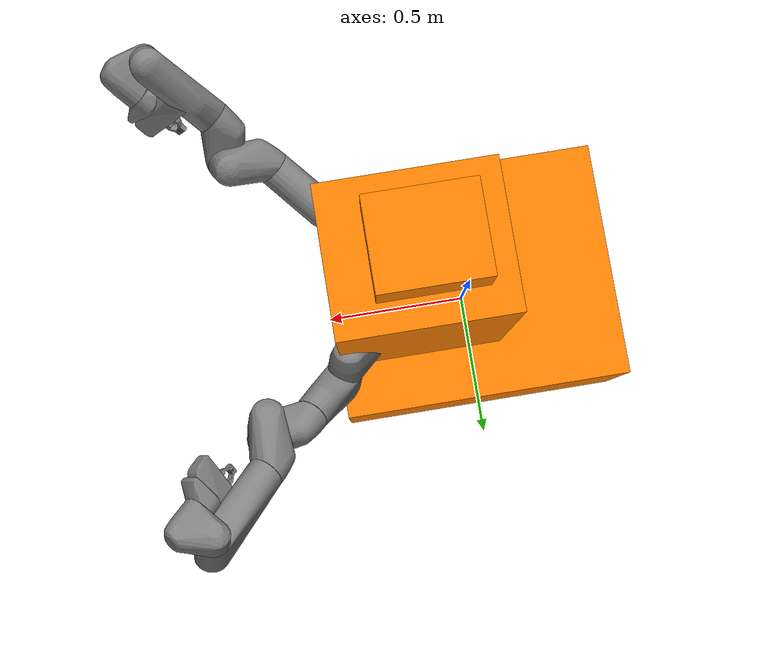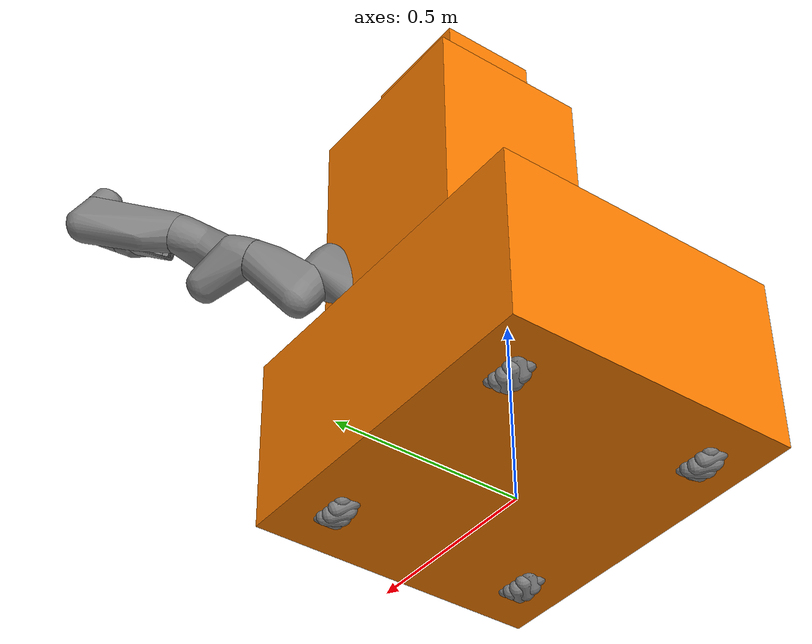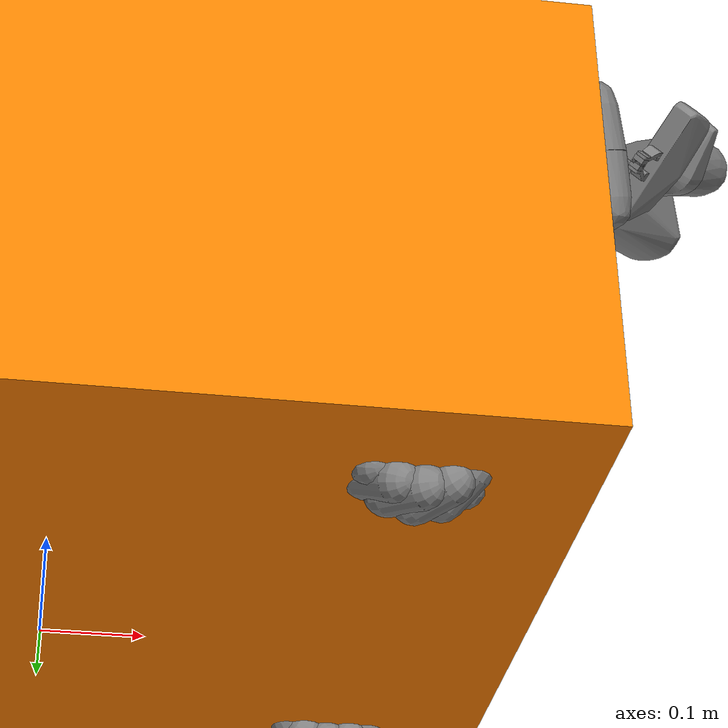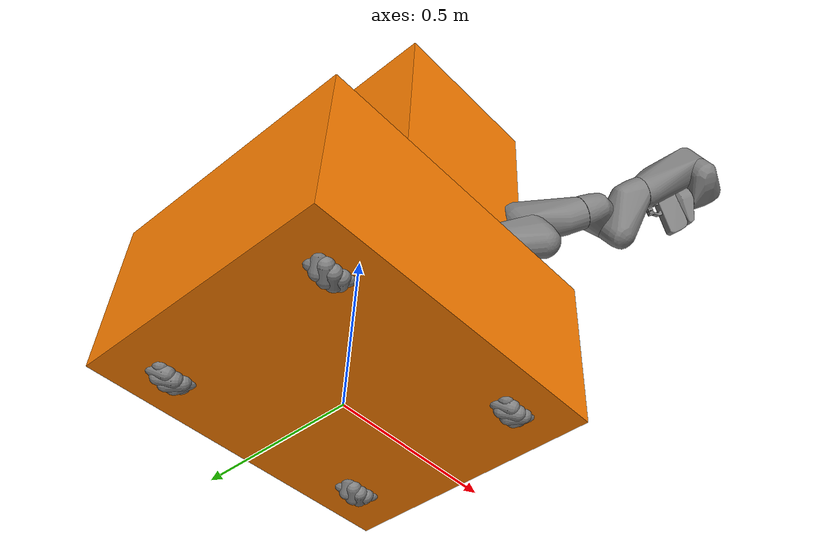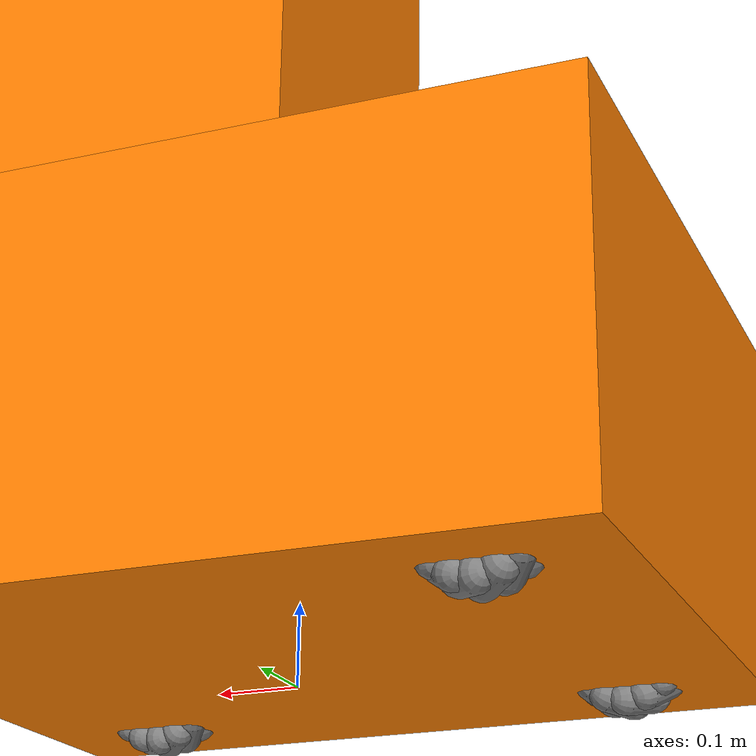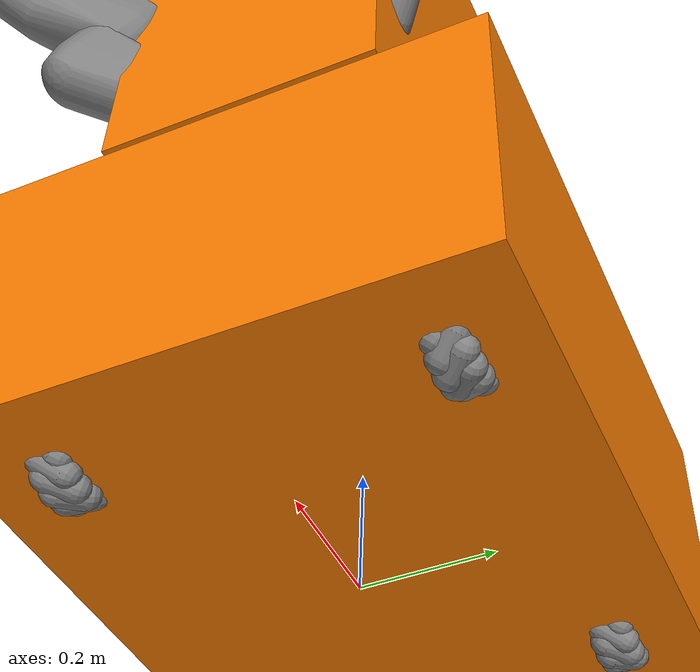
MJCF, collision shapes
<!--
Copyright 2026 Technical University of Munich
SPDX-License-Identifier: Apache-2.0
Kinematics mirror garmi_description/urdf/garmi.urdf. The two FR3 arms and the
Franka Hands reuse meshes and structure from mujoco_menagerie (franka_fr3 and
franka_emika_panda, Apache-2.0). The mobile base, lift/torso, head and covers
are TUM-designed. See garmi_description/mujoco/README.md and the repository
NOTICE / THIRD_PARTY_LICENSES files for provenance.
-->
<mujoco model="garmi">
  <compiler angle="radian" assetdir="assets" autolimits="true"/>

  <option integrator="implicitfast"/>

  <default>
    <!-- Franka FR3 arm (from mujoco_menagerie/franka_fr3). -->
    <default class="fr3">
      <joint damping="0.21" armature="0.195" frictionloss="1.137"/>
      <position inheritrange="1"/>
      <default class="fr3_vis">
        <geom type="mesh" group="2" contype="0" conaffinity="0"/>
      </default>
      <default class="fr3_col">
        <!-- contype/conaffinity 3 = bit1 (floor) + bit2 (robot self-collision) -->
        <geom type="mesh" group="3" mass="0" density="0" contype="3" conaffinity="3"/>
      </default>
    </default>

    <!-- Franka Hand (from mujoco_menagerie/franka_emika_panda). -->
    <default class="hand">
      <joint armature="0.1" damping="1" axis="0 0 1"/>
      <general dyntype="none" biastype="affine" ctrlrange="-2.8973 2.8973" forcerange="-87 87"/>
      <default class="finger">
        <joint axis="0 1 0" type="slide" range="0 0.04"/>
      </default>
      <default class="hand_vis">
        <geom type="mesh" contype="0" conaffinity="0" group="2"/>
      </default>
      <default class="hand_col">
        <geom type="mesh" group="3" contype="3" conaffinity="3"/>
        <default class="fingertip_pad_collision_1">
          <geom type="box" size="0.0085 0.004 0.0085" pos="0 0.0055 0.0445"/>
        </default>
        <default class="fingertip_pad_collision_2">
          <geom type="box" size="0.003 0.002 0.003" pos="0.0055 0.002 0.05"/>
        </default>
        <default class="fingertip_pad_collision_3">
          <geom type="box" size="0.003 0.002 0.003" pos="-0.0055 0.002 0.05"/>
        </default>
        <default class="fingertip_pad_collision_4">
          <geom type="box" size="0.003 0.002 0.0035" pos="0.0055 0.002 0.0395"/>
        </default>
        <default class="fingertip_pad_collision_5">
          <geom type="box" size="0.003 0.002 0.0035" pos="-0.0055 0.002 0.0395"/>
        </default>
      </default>
    </default>

    <!-- Garmi-specific parts (base, lift, torso, head). -->
    <default class="garmi_vis">
      <geom type="mesh" group="2" contype="0" conaffinity="0" density="0"/>
    </default>
    <!-- Mecanum wheel hub (driven hinge about the axle). The hub itself has no
         collision; ground contact is via the free-spinning rollers below. -->
    <default class="wheel">
      <joint axis="0 1 0" damping="0.3" frictionloss="0.3"/>
    </default>
    <default class="roller">
      <joint damping="0.0005" frictionloss="0.0005"/>
      <!-- group 3 = hidden collision geom; contype 4 / conaffinity 1 lets
           rollers touch the floor (bit1) but not each other or the self-
           collision boxes (bit2). -->
      <geom type="capsule" group="3" contype="4" conaffinity="1" condim="3"
            friction="1.2 0.005 0.0001" priority="1" solref="0.01 1" solimp="0.9 0.95 0.002"/>
    </default>
    <default class="selfcol">
      <geom type="box" group="3" contype="2" conaffinity="2" mass="0" rgba="1 0.5 0 0.15"/>
    </default>
  </default>

  <asset>
    <!-- Shared materials (FR3 + Hand). -->
    <material name="black" rgba=".2 .2 .2 1"/>
    <material name="white" rgba="1 1 1 1"/>
    <material name="off_white" rgba="0.901961 0.921569 0.929412 1"/>
    <material name="red" rgba="1 0.072272 0.039546 1"/>
    <material name="gray" rgba="0.863156 0.863156 0.863157 1"/>
    <material name="button_green" rgba="0.102241 0.571125 0.102242 1"/>
    <material name="button_red" rgba="0.520996 0.008023 0.013702 1"/>
    <material name="button_blue" rgba="0.024157 0.445201 0.737911 1"/>

    <!-- Garmi materials. -->
    <texture type="2d" name="fabric" file="body/fabric.png"/>
    <texture type="2d" name="face" file="head/face.png"/>
    <material name="Fabric" texture="fabric" specular="0.5" shininess="0.09"/>
    <material name="Grey_Plastic" specular="0.5" shininess="0.1225" rgba="0.066626 0.059511 0.048172 1"/>
    <material name="Screen" specular="0.5" shininess="1.0" rgba="0 0 0 1"/>
    <material name="White_Plastic" specular="0.5" shininess="0.25" rgba="1 1 1 1"/>
    <material name="Face" texture="face" specular="0.5" shininess="1.0"/>
    <material name="chassis" rgba="0.2 0.2 0.2 1"/>
    <material name="cover_grey" rgba="0.45 0.45 0.45 1"/>
    <material name="wheel" rgba="0.1 0.1 0.1 1"/>

    <mesh file="link0_0.obj"/>
    <mesh file="link0_1.obj"/>
    <mesh file="link0_2.obj"/>
    <mesh file="link0_3.obj"/>
    <mesh file="link0_4.obj"/>
    <mesh file="link0_5.obj"/>
    <mesh file="link0_7.obj"/>
    <mesh file="link0_8.obj"/>
    <mesh file="link0_9.obj"/>
    <mesh file="link0_10.obj"/>
    <mesh file="link0_11.obj"/>
    <mesh file="link1.obj"/>
    <mesh file="link2.obj"/>
    <mesh file="link3_0.obj"/>
    <mesh file="link3_1.obj"/>
    <mesh file="link4_0.obj"/>
    <mesh file="link4_1.obj"/>
    <mesh file="link5_0.obj"/>
    <mesh file="link5_1.obj"/>
    <mesh file="link5_2.obj"/>
    <mesh file="link6_0.obj"/>
    <mesh file="link6_1.obj"/>
    <mesh file="link6_2.obj"/>
    <mesh file="link6_3.obj"/>
    <mesh file="link6_4.obj"/>
    <mesh file="link6_5.obj"/>
    <mesh file="link6_6.obj"/>
    <mesh file="link6_7.obj"/>
    <mesh file="link7_0.obj"/>
    <mesh file="link7_1.obj"/>
    <mesh file="link7_2.obj"/>
    <mesh file="link7_3.obj"/>
    <mesh name="link0_coll" file="link0.stl"/>
    <mesh name="link1_coll" file="link1.stl"/>
    <mesh name="link2_coll" file="link2.stl"/>
    <mesh name="link3_coll" file="link3.stl"/>
    <mesh name="link4_coll" file="link4.stl"/>
    <mesh name="link5_coll" file="link5.stl"/>
    <mesh name="link6_coll" file="link6.stl"/>
    <mesh name="link7_coll" file="link7.stl"/>

    <!-- Franka Hand meshes. -->
    <mesh file="hand_0.obj"/>
    <mesh file="hand_1.obj"/>
    <mesh file="hand_2.obj"/>
    <mesh file="hand_3.obj"/>
    <mesh file="hand_4.obj"/>
    <mesh file="finger_0.obj"/>
    <mesh file="finger_1.obj"/>
    <mesh name="hand_c" file="hand.stl"/>

    <!-- Garmi base / lift / wheel meshes. -->
    <mesh name="chassis" file="body.stl"/>
    <mesh name="side_cover" file="side-cover.stl"/>
    <mesh name="end_cover" file="end-cover.stl"/>
    <mesh name="lights" file="lights.stl"/>
    <mesh name="mecanum" file="mecanum.stl"/>
    <mesh name="plate" file="plate.stl"/>
    <mesh name="lift_base" file="base.stl"/>
    <mesh name="lower" file="lower.stl"/>
    <mesh name="upper" file="upper.stl"/>

    <!-- Garmi torso / head / neck / covers (split by material). -->
    <mesh file="body/body_0.obj"/>
    <mesh file="body/body_1.obj"/>
    <mesh file="body/body_2.obj"/>
    <mesh file="body/body_3.obj"/>
    <mesh file="head/head_0.obj"/>
    <mesh file="head/head_1.obj"/>
    <mesh file="cover/cover.obj"/>
    <mesh file="mounting_plate/mounting_plate.obj"/>
    <mesh file="neck_1/neck_1.obj"/>
    <mesh file="neck_2/neck_2.obj"/>
  </asset>

  <worldbody>
    <body name="base_link" pos="0 0 0.0259" childclass="garmi_vis">
      <freejoint name="base_free"/>
      <inertial pos="0.012 0.002 0.067" mass="165.304"
        fullinertia="4.4744 7.1624 4.6155 0.03098 0.003647 0.1228"/>

      <!-- Mobile base shell (visual only). -->
      <geom mesh="chassis" material="chassis"/>
      <geom mesh="side_cover" material="cover_grey"/>
      <geom mesh="side_cover" material="cover_grey" quat="0 0 0 1"/>
      <geom mesh="end_cover" material="cover_grey"/>
      <geom mesh="end_cover" material="cover_grey" quat="0 0 0 1"/>
      <geom mesh="lights" material="red"/>
      <geom mesh="cover" material="White_Plastic" quat="0.500048 0.5 0.499952 0.5"/>
      <geom mesh="mounting_plate" material="Grey_Plastic" quat="0.500048 0.5 0.499952 0.5"/>
      <!-- Coarse self-collision volume for the mobile base, including the TUM
           cover on top (spans the chassis + cover, ~0.03..0.50 m). -->
      <geom class="selfcol" pos="0 0 0.2414" size="0.4790 0.3950 0.2378"/>

      <!-- Mecanum wheels: driven hub + free-spinning 45-deg rollers
           (true mecanum; produces holonomic motion via physics). -->
      <body name="wheel_fl" pos="0.319 0.2755 0.05">
        <joint name="wheel_fl_joint" class="wheel"/>
        <inertial pos="0 0 0" mass="1.8" diaginertia="0.0035 0.0052 0.0035"/>
        <geom class="garmi_vis" mesh="mecanum" material="wheel" quat="0.707107 0.707107 0 0"/>
        <body name="wheel_fl_r0" pos="0.05390 0.00000 0.00000">
          <joint name="wheel_fl_r0_j" type="hinge" axis="-0.00000 0.70711 0.70711" damping="0.0005" frictionloss="0.0005"/>
          <geom class="roller" fromto="0.00000 -0.01414 -0.01414 -0.00000 0.01414 0.01414" size="0.022"/>
        </body>
        <body name="wheel_fl_r1" pos="0.04856 0.00000 0.02339">
          <joint name="wheel_fl_r1_j" type="hinge" axis="-0.30680 0.70711 0.63708" damping="0.0005" frictionloss="0.0005"/>
          <geom class="roller" fromto="0.00614 -0.01414 -0.01274 -0.00614 0.01414 0.01274" size="0.022"/>
        </body>
        <body name="wheel_fl_r2" pos="0.03361 0.00000 0.04214">
          <joint name="wheel_fl_r2_j" type="hinge" axis="-0.55284 0.70711 0.44087" damping="0.0005" frictionloss="0.0005"/>
          <geom class="roller" fromto="0.01106 -0.01414 -0.00882 -0.01106 0.01414 0.00882" size="0.022"/>
        </body>
        <body name="wheel_fl_r3" pos="0.01199 0.00000 0.05255">
          <joint name="wheel_fl_r3_j" type="hinge" axis="-0.68938 0.70711 0.15735" damping="0.0005" frictionloss="0.0005"/>
          <geom class="roller" fromto="0.01379 -0.01414 -0.00315 -0.01379 0.01414 0.00315" size="0.022"/>
        </body>
        <body name="wheel_fl_r4" pos="-0.01199 0.00000 0.05255">
          <joint name="wheel_fl_r4_j" type="hinge" axis="-0.68938 0.70711 -0.15735" damping="0.0005" frictionloss="0.0005"/>
          <geom class="roller" fromto="0.01379 -0.01414 0.00315 -0.01379 0.01414 -0.00315" size="0.022"/>
        </body>
        <body name="wheel_fl_r5" pos="-0.03361 0.00000 0.04214">
          <joint name="wheel_fl_r5_j" type="hinge" axis="-0.55284 0.70711 -0.44087" damping="0.0005" frictionloss="0.0005"/>
          <geom class="roller" fromto="0.01106 -0.01414 0.00882 -0.01106 0.01414 -0.00882" size="0.022"/>
        </body>
        <body name="wheel_fl_r6" pos="-0.04856 0.00000 0.02339">
          <joint name="wheel_fl_r6_j" type="hinge" axis="-0.30680 0.70711 -0.63708" damping="0.0005" frictionloss="0.0005"/>
          <geom class="roller" fromto="0.00614 -0.01414 0.01274 -0.00614 0.01414 -0.01274" size="0.022"/>
        </body>
        <body name="wheel_fl_r7" pos="-0.05390 0.00000 0.00000">
          <joint name="wheel_fl_r7_j" type="hinge" axis="-0.00000 0.70711 -0.70711" damping="0.0005" frictionloss="0.0005"/>
          <geom class="roller" fromto="0.00000 -0.01414 0.01414 -0.00000 0.01414 -0.01414" size="0.022"/>
        </body>
        <body name="wheel_fl_r8" pos="-0.04856 0.00000 -0.02339">
          <joint name="wheel_fl_r8_j" type="hinge" axis="0.30680 0.70711 -0.63708" damping="0.0005" frictionloss="0.0005"/>
          <geom class="roller" fromto="-0.00614 -0.01414 0.01274 0.00614 0.01414 -0.01274" size="0.022"/>
        </body>
        <body name="wheel_fl_r9" pos="-0.03361 0.00000 -0.04214">
          <joint name="wheel_fl_r9_j" type="hinge" axis="0.55284 0.70711 -0.44087" damping="0.0005" frictionloss="0.0005"/>
          <geom class="roller" fromto="-0.01106 -0.01414 0.00882 0.01106 0.01414 -0.00882" size="0.022"/>
        </body>
        <body name="wheel_fl_r10" pos="-0.01199 0.00000 -0.05255">
          <joint name="wheel_fl_r10_j" type="hinge" axis="0.68938 0.70711 -0.15735" damping="0.0005" frictionloss="0.0005"/>
          <geom class="roller" fromto="-0.01379 -0.01414 0.00315 0.01379 0.01414 -0.00315" size="0.022"/>
        </body>
        <body name="wheel_fl_r11" pos="0.01199 0.00000 -0.05255">
          <joint name="wheel_fl_r11_j" type="hinge" axis="0.68938 0.70711 0.15735" damping="0.0005" frictionloss="0.0005"/>
          <geom class="roller" fromto="-0.01379 -0.01414 -0.00315 0.01379 0.01414 0.00315" size="0.022"/>
        </body>
        <body name="wheel_fl_r12" pos="0.03361 0.00000 -0.04214">
          <joint name="wheel_fl_r12_j" type="hinge" axis="0.55284 0.70711 0.44087" damping="0.0005" frictionloss="0.0005"/>
          <geom class="roller" fromto="-0.01106 -0.01414 -0.00882 0.01106 0.01414 0.00882" size="0.022"/>
        </body>
        <body name="wheel_fl_r13" pos="0.04856 0.00000 -0.02339">
          <joint name="wheel_fl_r13_j" type="hinge" axis="0.30680 0.70711 0.63708" damping="0.0005" frictionloss="0.0005"/>
          <geom class="roller" fromto="-0.00614 -0.01414 -0.01274 0.00614 0.01414 0.01274" size="0.022"/>
        </body>
      </body>
      <body name="wheel_fr" pos="0.319 -0.2755 0.05">
        <joint name="wheel_fr_joint" class="wheel"/>
        <inertial pos="0 0 0" mass="1.8" diaginertia="0.0035 0.0052 0.0035"/>
        <geom class="garmi_vis" mesh="mecanum" material="wheel" quat="0.707107 0.707107 0 0"/>
        <body name="wheel_fr_r0" pos="0.05390 0.00000 0.00000">
          <joint name="wheel_fr_r0_j" type="hinge" axis="-0.00000 -0.70711 0.70711" damping="0.0005" frictionloss="0.0005"/>
          <geom class="roller" fromto="0.00000 0.01414 -0.01414 -0.00000 -0.01414 0.01414" size="0.022"/>
        </body>
        <body name="wheel_fr_r1" pos="0.04856 0.00000 0.02339">
          <joint name="wheel_fr_r1_j" type="hinge" axis="-0.30680 -0.70711 0.63708" damping="0.0005" frictionloss="0.0005"/>
          <geom class="roller" fromto="0.00614 0.01414 -0.01274 -0.00614 -0.01414 0.01274" size="0.022"/>
        </body>
        <body name="wheel_fr_r2" pos="0.03361 0.00000 0.04214">
          <joint name="wheel_fr_r2_j" type="hinge" axis="-0.55284 -0.70711 0.44087" damping="0.0005" frictionloss="0.0005"/>
          <geom class="roller" fromto="0.01106 0.01414 -0.00882 -0.01106 -0.01414 0.00882" size="0.022"/>
        </body>
        <body name="wheel_fr_r3" pos="0.01199 0.00000 0.05255">
          <joint name="wheel_fr_r3_j" type="hinge" axis="-0.68938 -0.70711 0.15735" damping="0.0005" frictionloss="0.0005"/>
          <geom class="roller" fromto="0.01379 0.01414 -0.00315 -0.01379 -0.01414 0.00315" size="0.022"/>
        </body>
        <body name="wheel_fr_r4" pos="-0.01199 0.00000 0.05255">
          <joint name="wheel_fr_r4_j" type="hinge" axis="-0.68938 -0.70711 -0.15735" damping="0.0005" frictionloss="0.0005"/>
          <geom class="roller" fromto="0.01379 0.01414 0.00315 -0.01379 -0.01414 -0.00315" size="0.022"/>
        </body>
        <body name="wheel_fr_r5" pos="-0.03361 0.00000 0.04214">
          <joint name="wheel_fr_r5_j" type="hinge" axis="-0.55284 -0.70711 -0.44087" damping="0.0005" frictionloss="0.0005"/>
          <geom class="roller" fromto="0.01106 0.01414 0.00882 -0.01106 -0.01414 -0.00882" size="0.022"/>
        </body>
        <body name="wheel_fr_r6" pos="-0.04856 0.00000 0.02339">
          <joint name="wheel_fr_r6_j" type="hinge" axis="-0.30680 -0.70711 -0.63708" damping="0.0005" frictionloss="0.0005"/>
          <geom class="roller" fromto="0.00614 0.01414 0.01274 -0.00614 -0.01414 -0.01274" size="0.022"/>
        </body>
        <body name="wheel_fr_r7" pos="-0.05390 0.00000 0.00000">
          <joint name="wheel_fr_r7_j" type="hinge" axis="-0.00000 -0.70711 -0.70711" damping="0.0005" frictionloss="0.0005"/>
          <geom class="roller" fromto="0.00000 0.01414 0.01414 -0.00000 -0.01414 -0.01414" size="0.022"/>
        </body>
        <body name="wheel_fr_r8" pos="-0.04856 0.00000 -0.02339">
          <joint name="wheel_fr_r8_j" type="hinge" axis="0.30680 -0.70711 -0.63708" damping="0.0005" frictionloss="0.0005"/>
          <geom class="roller" fromto="-0.00614 0.01414 0.01274 0.00614 -0.01414 -0.01274" size="0.022"/>
        </body>
        <body name="wheel_fr_r9" pos="-0.03361 0.00000 -0.04214">
          <joint name="wheel_fr_r9_j" type="hinge" axis="0.55284 -0.70711 -0.44087" damping="0.0005" frictionloss="0.0005"/>
          <geom class="roller" fromto="-0.01106 0.01414 0.00882 0.01106 -0.01414 -0.00882" size="0.022"/>
        </body>
        <body name="wheel_fr_r10" pos="-0.01199 0.00000 -0.05255">
          <joint name="wheel_fr_r10_j" type="hinge" axis="0.68938 -0.70711 -0.15735" damping="0.0005" frictionloss="0.0005"/>
          <geom class="roller" fromto="-0.01379 0.01414 0.00315 0.01379 -0.01414 -0.00315" size="0.022"/>
        </body>
        <body name="wheel_fr_r11" pos="0.01199 0.00000 -0.05255">
          <joint name="wheel_fr_r11_j" type="hinge" axis="0.68938 -0.70711 0.15735" damping="0.0005" frictionloss="0.0005"/>
          <geom class="roller" fromto="-0.01379 0.01414 -0.00315 0.01379 -0.01414 0.00315" size="0.022"/>
        </body>
        <body name="wheel_fr_r12" pos="0.03361 0.00000 -0.04214">
          <joint name="wheel_fr_r12_j" type="hinge" axis="0.55284 -0.70711 0.44087" damping="0.0005" frictionloss="0.0005"/>
          <geom class="roller" fromto="-0.01106 0.01414 -0.00882 0.01106 -0.01414 0.00882" size="0.022"/>
        </body>
        <body name="wheel_fr_r13" pos="0.04856 0.00000 -0.02339">
          <joint name="wheel_fr_r13_j" type="hinge" axis="0.30680 -0.70711 0.63708" damping="0.0005" frictionloss="0.0005"/>
          <geom class="roller" fromto="-0.00614 0.01414 -0.01274 0.00614 -0.01414 0.01274" size="0.022"/>
        </body>
      </body>
      <body name="wheel_rl" pos="-0.319 0.2755 0.05">
        <joint name="wheel_rl_joint" class="wheel"/>
        <inertial pos="0 0 0" mass="1.8" diaginertia="0.0035 0.0052 0.0035"/>
        <geom class="garmi_vis" mesh="mecanum" material="wheel" quat="0.707107 0.707107 0 0"/>
        <body name="wheel_rl_r0" pos="0.05390 0.00000 0.00000">
          <joint name="wheel_rl_r0_j" type="hinge" axis="-0.00000 -0.70711 0.70711" damping="0.0005" frictionloss="0.0005"/>
          <geom class="roller" fromto="0.00000 0.01414 -0.01414 -0.00000 -0.01414 0.01414" size="0.022"/>
        </body>
        <body name="wheel_rl_r1" pos="0.04856 0.00000 0.02339">
          <joint name="wheel_rl_r1_j" type="hinge" axis="-0.30680 -0.70711 0.63708" damping="0.0005" frictionloss="0.0005"/>
          <geom class="roller" fromto="0.00614 0.01414 -0.01274 -0.00614 -0.01414 0.01274" size="0.022"/>
        </body>
        <body name="wheel_rl_r2" pos="0.03361 0.00000 0.04214">
          <joint name="wheel_rl_r2_j" type="hinge" axis="-0.55284 -0.70711 0.44087" damping="0.0005" frictionloss="0.0005"/>
          <geom class="roller" fromto="0.01106 0.01414 -0.00882 -0.01106 -0.01414 0.00882" size="0.022"/>
        </body>
        <body name="wheel_rl_r3" pos="0.01199 0.00000 0.05255">
          <joint name="wheel_rl_r3_j" type="hinge" axis="-0.68938 -0.70711 0.15735" damping="0.0005" frictionloss="0.0005"/>
          <geom class="roller" fromto="0.01379 0.01414 -0.00315 -0.01379 -0.01414 0.00315" size="0.022"/>
        </body>
        <body name="wheel_rl_r4" pos="-0.01199 0.00000 0.05255">
          <joint name="wheel_rl_r4_j" type="hinge" axis="-0.68938 -0.70711 -0.15735" damping="0.0005" frictionloss="0.0005"/>
          <geom class="roller" fromto="0.01379 0.01414 0.00315 -0.01379 -0.01414 -0.00315" size="0.022"/>
        </body>
        <body name="wheel_rl_r5" pos="-0.03361 0.00000 0.04214">
          <joint name="wheel_rl_r5_j" type="hinge" axis="-0.55284 -0.70711 -0.44087" damping="0.0005" frictionloss="0.0005"/>
          <geom class="roller" fromto="0.01106 0.01414 0.00882 -0.01106 -0.01414 -0.00882" size="0.022"/>
        </body>
        <body name="wheel_rl_r6" pos="-0.04856 0.00000 0.02339">
          <joint name="wheel_rl_r6_j" type="hinge" axis="-0.30680 -0.70711 -0.63708" damping="0.0005" frictionloss="0.0005"/>
          <geom class="roller" fromto="0.00614 0.01414 0.01274 -0.00614 -0.01414 -0.01274" size="0.022"/>
        </body>
        <body name="wheel_rl_r7" pos="-0.05390 0.00000 0.00000">
          <joint name="wheel_rl_r7_j" type="hinge" axis="-0.00000 -0.70711 -0.70711" damping="0.0005" frictionloss="0.0005"/>
          <geom class="roller" fromto="0.00000 0.01414 0.01414 -0.00000 -0.01414 -0.01414" size="0.022"/>
        </body>
        <body name="wheel_rl_r8" pos="-0.04856 0.00000 -0.02339">
          <joint name="wheel_rl_r8_j" type="hinge" axis="0.30680 -0.70711 -0.63708" damping="0.0005" frictionloss="0.0005"/>
          <geom class="roller" fromto="-0.00614 0.01414 0.01274 0.00614 -0.01414 -0.01274" size="0.022"/>
        </body>
        <body name="wheel_rl_r9" pos="-0.03361 0.00000 -0.04214">
          <joint name="wheel_rl_r9_j" type="hinge" axis="0.55284 -0.70711 -0.44087" damping="0.0005" frictionloss="0.0005"/>
          <geom class="roller" fromto="-0.01106 0.01414 0.00882 0.01106 -0.01414 -0.00882" size="0.022"/>
        </body>
        <body name="wheel_rl_r10" pos="-0.01199 0.00000 -0.05255">
          <joint name="wheel_rl_r10_j" type="hinge" axis="0.68938 -0.70711 -0.15735" damping="0.0005" frictionloss="0.0005"/>
          <geom class="roller" fromto="-0.01379 0.01414 0.00315 0.01379 -0.01414 -0.00315" size="0.022"/>
        </body>
        <body name="wheel_rl_r11" pos="0.01199 0.00000 -0.05255">
          <joint name="wheel_rl_r11_j" type="hinge" axis="0.68938 -0.70711 0.15735" damping="0.0005" frictionloss="0.0005"/>
          <geom class="roller" fromto="-0.01379 0.01414 -0.00315 0.01379 -0.01414 0.00315" size="0.022"/>
        </body>
        <body name="wheel_rl_r12" pos="0.03361 0.00000 -0.04214">
          <joint name="wheel_rl_r12_j" type="hinge" axis="0.55284 -0.70711 0.44087" damping="0.0005" frictionloss="0.0005"/>
          <geom class="roller" fromto="-0.01106 0.01414 -0.00882 0.01106 -0.01414 0.00882" size="0.022"/>
        </body>
        <body name="wheel_rl_r13" pos="0.04856 0.00000 -0.02339">
          <joint name="wheel_rl_r13_j" type="hinge" axis="0.30680 -0.70711 0.63708" damping="0.0005" frictionloss="0.0005"/>
          <geom class="roller" fromto="-0.00614 0.01414 -0.01274 0.00614 -0.01414 0.01274" size="0.022"/>
        </body>
      </body>
      <body name="wheel_rr" pos="-0.319 -0.2755 0.05">
        <joint name="wheel_rr_joint" class="wheel"/>
        <inertial pos="0 0 0" mass="1.8" diaginertia="0.0035 0.0052 0.0035"/>
        <geom class="garmi_vis" mesh="mecanum" material="wheel" quat="0.707107 0.707107 0 0"/>
        <body name="wheel_rr_r0" pos="0.05390 0.00000 0.00000">
          <joint name="wheel_rr_r0_j" type="hinge" axis="-0.00000 0.70711 0.70711" damping="0.0005" frictionloss="0.0005"/>
          <geom class="roller" fromto="0.00000 -0.01414 -0.01414 -0.00000 0.01414 0.01414" size="0.022"/>
        </body>
        <body name="wheel_rr_r1" pos="0.04856 0.00000 0.02339">
          <joint name="wheel_rr_r1_j" type="hinge" axis="-0.30680 0.70711 0.63708" damping="0.0005" frictionloss="0.0005"/>
          <geom class="roller" fromto="0.00614 -0.01414 -0.01274 -0.00614 0.01414 0.01274" size="0.022"/>
        </body>
        <body name="wheel_rr_r2" pos="0.03361 0.00000 0.04214">
          <joint name="wheel_rr_r2_j" type="hinge" axis="-0.55284 0.70711 0.44087" damping="0.0005" frictionloss="0.0005"/>
          <geom class="roller" fromto="0.01106 -0.01414 -0.00882 -0.01106 0.01414 0.00882" size="0.022"/>
        </body>
        <body name="wheel_rr_r3" pos="0.01199 0.00000 0.05255">
          <joint name="wheel_rr_r3_j" type="hinge" axis="-0.68938 0.70711 0.15735" damping="0.0005" frictionloss="0.0005"/>
          <geom class="roller" fromto="0.01379 -0.01414 -0.00315 -0.01379 0.01414 0.00315" size="0.022"/>
        </body>
        <body name="wheel_rr_r4" pos="-0.01199 0.00000 0.05255">
          <joint name="wheel_rr_r4_j" type="hinge" axis="-0.68938 0.70711 -0.15735" damping="0.0005" frictionloss="0.0005"/>
          <geom class="roller" fromto="0.01379 -0.01414 0.00315 -0.01379 0.01414 -0.00315" size="0.022"/>
        </body>
        <body name="wheel_rr_r5" pos="-0.03361 0.00000 0.04214">
          <joint name="wheel_rr_r5_j" type="hinge" axis="-0.55284 0.70711 -0.44087" damping="0.0005" frictionloss="0.0005"/>
          <geom class="roller" fromto="0.01106 -0.01414 0.00882 -0.01106 0.01414 -0.00882" size="0.022"/>
        </body>
        <body name="wheel_rr_r6" pos="-0.04856 0.00000 0.02339">
          <joint name="wheel_rr_r6_j" type="hinge" axis="-0.30680 0.70711 -0.63708" damping="0.0005" frictionloss="0.0005"/>
          <geom class="roller" fromto="0.00614 -0.01414 0.01274 -0.00614 0.01414 -0.01274" size="0.022"/>
        </body>
        <body name="wheel_rr_r7" pos="-0.05390 0.00000 0.00000">
          <joint name="wheel_rr_r7_j" type="hinge" axis="-0.00000 0.70711 -0.70711" damping="0.0005" frictionloss="0.0005"/>
          <geom class="roller" fromto="0.00000 -0.01414 0.01414 -0.00000 0.01414 -0.01414" size="0.022"/>
        </body>
        <body name="wheel_rr_r8" pos="-0.04856 0.00000 -0.02339">
          <joint name="wheel_rr_r8_j" type="hinge" axis="0.30680 0.70711 -0.63708" damping="0.0005" frictionloss="0.0005"/>
          <geom class="roller" fromto="-0.00614 -0.01414 0.01274 0.00614 0.01414 -0.01274" size="0.022"/>
        </body>
        <body name="wheel_rr_r9" pos="-0.03361 0.00000 -0.04214">
          <joint name="wheel_rr_r9_j" type="hinge" axis="0.55284 0.70711 -0.44087" damping="0.0005" frictionloss="0.0005"/>
          <geom class="roller" fromto="-0.01106 -0.01414 0.00882 0.01106 0.01414 -0.00882" size="0.022"/>
        </body>
        <body name="wheel_rr_r10" pos="-0.01199 0.00000 -0.05255">
          <joint name="wheel_rr_r10_j" type="hinge" axis="0.68938 0.70711 -0.15735" damping="0.0005" frictionloss="0.0005"/>
          <geom class="roller" fromto="-0.01379 -0.01414 0.00315 0.01379 0.01414 -0.00315" size="0.022"/>
        </body>
        <body name="wheel_rr_r11" pos="0.01199 0.00000 -0.05255">
          <joint name="wheel_rr_r11_j" type="hinge" axis="0.68938 0.70711 0.15735" damping="0.0005" frictionloss="0.0005"/>
          <geom class="roller" fromto="-0.01379 -0.01414 -0.00315 0.01379 0.01414 0.00315" size="0.022"/>
        </body>
        <body name="wheel_rr_r12" pos="0.03361 0.00000 -0.04214">
          <joint name="wheel_rr_r12_j" type="hinge" axis="0.55284 0.70711 0.44087" damping="0.0005" frictionloss="0.0005"/>
          <geom class="roller" fromto="-0.01106 -0.01414 -0.00882 0.01106 0.01414 0.00882" size="0.022"/>
        </body>
        <body name="wheel_rr_r13" pos="0.04856 0.00000 -0.02339">
          <joint name="wheel_rr_r13_j" type="hinge" axis="0.30680 0.70711 0.63708" damping="0.0005" frictionloss="0.0005"/>
          <geom class="roller" fromto="-0.00614 -0.01414 -0.01274 0.00614 0.01414 0.01274" size="0.022"/>
        </body>
      </body>

      <!-- Lift / torso column. -->
      <body name="default_mount" pos="0 0 0.28">
        <body name="lift_0_plate" pos="0.1115 0 -0.0037" quat="0.923880 0 0 0.382683">
          <geom class="garmi_vis" mesh="plate" material="cover_grey"/>
          <body name="lift_0_base" pos="0 0 0.018">
            <geom class="garmi_vis" mesh="lift_base" material="cover_grey" pos="0 0 -0.0179"/>
            <body name="lift_0_lower" pos="0 0 0.027">
              <!-- High damping/armature + frictionloss model the slow, stiff,
                   non-backdrivable lead-screw lift (URDF limit: 0.088 m/s). -->
              <joint name="lift_0_lower_joint" type="slide" axis="0 0 1" range="0 0.4"
                     armature="20" damping="15000" frictionloss="10"/>
              <inertial pos="0 0 0.4" mass="10" diaginertia="0.5536 0.5537 0.0407"/>
              <geom class="garmi_vis" mesh="lower" material="cover_grey" pos="0 0 -0.467"/>
              <body name="lift_0_upper" pos="0 0 0.007">
                <joint name="lift_0_upper_joint" type="slide" axis="0 0 1" range="0 0.4"
                       armature="5" damping="200" frictionloss="10"/>
                <inertial pos="0 0 0.419" mass="10" diaginertia="0.599 0.599 0.0277"/>
                <geom class="garmi_vis" mesh="upper" material="cover_grey" pos="0 0 -0.847"/>

                <body name="lift_0_mount" pos="0 0 0.838">
                  <body name="lift_0_mount_rotated" quat="0.923879 0 0 -0.382684">

                    <!-- Static neck stub + torso shell ride on the lift mount. -->
                    <geom class="garmi_vis" mesh="neck_1" material="Grey_Plastic"
                      pos="-0.1109 0 -1.1513" quat="0.500048 0.5 0.499952 0.5"/>

                    <body name="body_link" pos="-0.1109 0 -1.1663" quat="0.500048 0.5 0.499952 0.5">
                      <geom class="garmi_vis" mesh="body_0" material="White_Plastic"/>
                      <geom class="garmi_vis" mesh="body_1" material="Grey_Plastic"/>
                      <geom class="garmi_vis" mesh="body_2" material="Fabric"/>
                      <geom class="garmi_vis" mesh="body_3" material="Screen"/>
                      <geom class="selfcol" pos="0.0013 0.9196 0.2028" quat="0.500049 -0.500001 -0.499951 -0.499999" size="0.2636 0.2221 0.4056"/>
                    </body>

                    <!-- Head: pan then tilt. -->
                    <body name="neck_2" pos="0.0279 0 0.0269">
                      <joint name="head_pan_joint" axis="0 0 1" range="-1.5707 1.5707"/>
                      <inertial pos="0 0 0" mass="0.5" diaginertia="0.001 0.001 0.001"/>
                      <geom class="garmi_vis" mesh="neck_2" material="Grey_Plastic"
                        pos="-0.1388 0 -1.1782" quat="0.500048 0.5 0.499952 0.5"/>
                      <body name="head" pos="0 -0.034 0.1521">
                        <joint name="head_tilt_joint" axis="0 -1 0" range="-0.7853 0.7853"/>
                        <inertial pos="0 0 0" mass="2.5" diaginertia="0.01 0.01 0.01"/>
                        <geom class="garmi_vis" mesh="head_0" material="Face"
                          pos="-0.1388 0.034 -1.3303" quat="0.500048 0.5 0.499952 0.5"/>
                        <geom class="garmi_vis" mesh="head_1" material="White_Plastic"
                          pos="-0.1388 0.034 -1.3303" quat="0.500048 0.5 0.499952 0.5"/>
                        <geom class="selfcol" pos="0.0412 0.0340 -0.0142" size="0.1605 0.1352 0.1601"/>
                      </body>
                    </body>

                    <!-- ================= LEFT ARM (arm_0) ================= -->
                    <body name="arm_0_mount" pos="0.1452 0.0611 -0.5157"
                      quat="0.828424 -0.441238 0.235103 -0.252485" childclass="fr3">
                      <body name="arm_0_link0">
                        <geom mesh="link0_0" material="off_white" class="fr3_vis"/>
                        <geom mesh="link0_1" material="black" class="fr3_vis"/>
                        <geom mesh="link0_2" material="off_white" class="fr3_vis"/>
                        <geom mesh="link0_3" material="black" class="fr3_vis"/>
                        <geom mesh="link0_4" material="off_white" class="fr3_vis"/>
                        <geom mesh="link0_5" material="black" class="fr3_vis"/>
                        <geom mesh="link0_7" material="white" class="fr3_vis"/>
                        <geom mesh="link0_8" material="white" class="fr3_vis"/>
                        <geom mesh="link0_9" material="black" class="fr3_vis"/>
                        <geom mesh="link0_10" material="off_white" class="fr3_vis"/>
                        <geom mesh="link0_11" material="white" class="fr3_vis"/>
                        <geom name="arm_0_link0_col" mesh="link0_coll" class="fr3_col"/>
                        <body name="arm_0_link1" pos="0 0 0.333">
                          <inertial pos="4.128e-07 -0.0181251 -0.0386036" quat="0.998098 -0.0605364 0.00380499 0.0110109" mass="2.92747" diaginertia="0.0239286 0.0227246 0.00610634"/>
                          <joint name="arm_0_joint1" axis="0 0 1" range="-2.9007 2.9007" actuatorfrcrange="-87 87"/>
                          <geom name="arm_0_link1_col" class="fr3_col" mesh="link1_coll"/>
                          <geom material="white" mesh="link1" class="fr3_vis"/>
                          <body name="arm_0_link2" quat="1 -1 0 0">
                            <inertial pos="0.00318289 -0.0743222 0.00881461" quat="0.502599 0.584437 -0.465998 0.434366" mass="2.93554" diaginertia="0.0629567 0.0411924 0.0246371"/>
                            <joint name="arm_0_joint2" axis="0 0 1" range="-1.8361 1.8361" actuatorfrcrange="-87 87"/>
                            <geom material="white" mesh="link2" class="fr3_vis"/>
                            <geom name="arm_0_link2_col" class="fr3_col" mesh="link2_coll"/>
                            <body name="arm_0_link3" pos="0 -0.316 0" quat="1 1 0 0">
                              <inertial pos="0.0407016 -0.00482006 -0.0289731" quat="0.921025 -0.244161 0.155272 0.260745" mass="2.2449" diaginertia="0.0267409 0.0189869 0.0171587"/>
                              <joint name="arm_0_joint3" axis="0 0 1" range="-2.9007 2.9007" actuatorfrcrange="-87 87"/>
                              <geom mesh="link3_0" material="white" class="fr3_vis"/>
                              <geom mesh="link3_1" material="black" class="fr3_vis"/>
                              <geom name="arm_0_link3_col" class="fr3_col" mesh="link3_coll"/>
                              <body name="arm_0_link4" pos="0.0825 0 0" quat="1 1 0 0">
                                <inertial pos="-0.0459101 0.0630493 -0.00851879" quat="0.438018 0.803311 0.00937812 0.403414" mass="2.6156" diaginertia="0.05139 0.0372717 0.0160047"/>
                                <joint name="arm_0_joint4" axis="0 0 1" range="-3.077 -0.1169" actuatorfrcrange="-87 87"/>
                                <geom mesh="link4_0" material="white" class="fr3_vis"/>
                                <geom mesh="link4_1" material="black" class="fr3_vis"/>
                                <geom name="arm_0_link4_col" class="fr3_col" mesh="link4_coll"/>
                                <body name="arm_0_link5" pos="-0.0825 0.384 0" quat="1 -1 0 0">
                                  <inertial pos="-0.00160396 0.0292536 -0.0972966" quat="0.919031 0.125604 0.0751531 -0.366003" mass="2.32712" diaginertia="0.0579335 0.0449144 0.0130634"/>
                                  <joint name="arm_0_joint5" axis="0 0 1" range="-2.8763 2.8763" actuatorfrcrange="-12 12" armature="0.074" frictionloss="0.763"/>
                                  <geom mesh="link5_0" material="white" class="fr3_vis"/>
                                  <geom mesh="link5_1" material="white" class="fr3_vis"/>
                                  <geom mesh="link5_2" material="black" class="fr3_vis"/>
                                  <geom name="arm_0_link5_col" class="fr3_col" mesh="link5_coll"/>
                                  <body name="arm_0_link6" quat="1 1 0 0">
                                    <inertial pos="0.0597131 -0.0410295 -0.0101693" quat="0.621301 0.552665 0.510011 0.220081" mass="1.81704" diaginertia="0.0175039 0.0161123 0.00193529"/>
                                    <joint name="arm_0_joint6" axis="0 0 1" range="0.4398 4.6216" actuatorfrcrange="-12 12" armature="0.074" frictionloss="0.44"/>
                                    <geom mesh="link6_0" material="button_green" class="fr3_vis"/>
                                    <geom mesh="link6_1" material="white" class="fr3_vis"/>
                                    <geom mesh="link6_2" material="white" class="fr3_vis"/>
                                    <geom mesh="link6_3" material="gray" class="fr3_vis"/>
                                    <geom mesh="link6_4" material="button_red" class="fr3_vis"/>
                                    <geom mesh="link6_5" material="white" class="fr3_vis"/>
                                    <geom mesh="link6_6" material="black" class="fr3_vis"/>
                                    <geom mesh="link6_7" material="button_blue" class="fr3_vis"/>
                                    <geom name="arm_0_link6_col" class="fr3_col" mesh="link6_coll"/>
                                    <body name="arm_0_link7" pos="0.088 0 0" quat="1 1 0 0">
                                      <inertial pos="0.00452258 0.00862619 -0.0161633" quat="0.727579 0.0978688 -0.24906 0.63168" mass="0.627143" diaginertia="0.000223836 0.000223642 5.64132e-07"/>
                                      <joint name="arm_0_joint7" axis="0 0 1" range="-3.0508 3.0508" actuatorfrcrange="-12 12" armature="0.074" frictionloss="0.248"/>
                                      <geom mesh="link7_0" material="black" class="fr3_vis"/>
                                      <geom mesh="link7_1" material="white" class="fr3_vis"/>
                                      <geom mesh="link7_2" material="white" class="fr3_vis"/>
                                      <geom mesh="link7_3" material="black" class="fr3_vis"/>
                                      <geom name="arm_0_link7_col" class="fr3_col" mesh="link7_coll"/>
                                      <body name="arm_0_hand" pos="0 0 0.107" quat="0.9238795 0 0 -0.3826834" childclass="hand">
                                        <inertial mass="0.73" pos="-0.01 0 0.03" diaginertia="0.001 0.0025 0.0017"/>
                                        <geom mesh="hand_0" material="off_white" class="hand_vis"/>
                                        <geom mesh="hand_1" material="black" class="hand_vis"/>
                                        <geom mesh="hand_2" material="black" class="hand_vis"/>
                                        <geom mesh="hand_3" material="white" class="hand_vis"/>
                                        <geom mesh="hand_4" material="off_white" class="hand_vis"/>
                                        <geom mesh="hand_c" class="hand_col"/>
                                        <body name="arm_0_left_finger" pos="0 0 0.0584">
                                          <inertial mass="0.015" pos="0 0 0" diaginertia="2.375e-6 2.375e-6 7.5e-7"/>
                                          <joint name="arm_0_finger_joint1" class="finger"/>
                                          <geom mesh="finger_0" material="off_white" class="hand_vis"/>
                                          <geom mesh="finger_1" material="black" class="hand_vis"/>
                                          <geom mesh="finger_0" class="hand_col"/>
                                          <geom class="fingertip_pad_collision_1"/>
                                          <geom class="fingertip_pad_collision_2"/>
                                          <geom class="fingertip_pad_collision_3"/>
                                          <geom class="fingertip_pad_collision_4"/>
                                          <geom class="fingertip_pad_collision_5"/>
                                        </body>
                                        <body name="arm_0_right_finger" pos="0 0 0.0584" quat="0 0 0 1">
                                          <inertial mass="0.015" pos="0 0 0" diaginertia="2.375e-6 2.375e-6 7.5e-7"/>
                                          <joint name="arm_0_finger_joint2" class="finger"/>
                                          <geom mesh="finger_0" material="off_white" class="hand_vis"/>
                                          <geom mesh="finger_1" material="black" class="hand_vis"/>
                                          <geom mesh="finger_0" class="hand_col"/>
                                          <geom class="fingertip_pad_collision_1"/>
                                          <geom class="fingertip_pad_collision_2"/>
                                          <geom class="fingertip_pad_collision_3"/>
                                          <geom class="fingertip_pad_collision_4"/>
                                          <geom class="fingertip_pad_collision_5"/>
                                        </body>
                                      </body>
                                    </body>
                                  </body>
                                </body>
                              </body>
                            </body>
                          </body>
                        </body>
                      </body>
                    </body>

                    <!-- ================= RIGHT ARM (arm_1) ================= -->
                    <body name="arm_1_mount" pos="0.1452 -0.0611 -0.5157"
                      quat="0.828424 0.441238 0.235103 0.252485" childclass="fr3">
                      <body name="arm_1_link0">
                        <geom mesh="link0_0" material="off_white" class="fr3_vis"/>
                        <geom mesh="link0_1" material="black" class="fr3_vis"/>
                        <geom mesh="link0_2" material="off_white" class="fr3_vis"/>
                        <geom mesh="link0_3" material="black" class="fr3_vis"/>
                        <geom mesh="link0_4" material="off_white" class="fr3_vis"/>
                        <geom mesh="link0_5" material="black" class="fr3_vis"/>
                        <geom mesh="link0_7" material="white" class="fr3_vis"/>
                        <geom mesh="link0_8" material="white" class="fr3_vis"/>
                        <geom mesh="link0_9" material="black" class="fr3_vis"/>
                        <geom mesh="link0_10" material="off_white" class="fr3_vis"/>
                        <geom mesh="link0_11" material="white" class="fr3_vis"/>
                        <geom name="arm_1_link0_col" mesh="link0_coll" class="fr3_col"/>
                        <body name="arm_1_link1" pos="0 0 0.333">
                          <inertial pos="4.128e-07 -0.0181251 -0.0386036" quat="0.998098 -0.0605364 0.00380499 0.0110109" mass="2.92747" diaginertia="0.0239286 0.0227246 0.00610634"/>
                          <joint name="arm_1_joint1" axis="0 0 1" range="-2.9007 2.9007" actuatorfrcrange="-87 87"/>
                          <geom name="arm_1_link1_col" class="fr3_col" mesh="link1_coll"/>
                          <geom material="white" mesh="link1" class="fr3_vis"/>
                          <body name="arm_1_link2" quat="1 -1 0 0">
                            <inertial pos="0.00318289 -0.0743222 0.00881461" quat="0.502599 0.584437 -0.465998 0.434366" mass="2.93554" diaginertia="0.0629567 0.0411924 0.0246371"/>
                            <joint name="arm_1_joint2" axis="0 0 1" range="-1.8361 1.8361" actuatorfrcrange="-87 87"/>
                            <geom material="white" mesh="link2" class="fr3_vis"/>
                            <geom name="arm_1_link2_col" class="fr3_col" mesh="link2_coll"/>
                            <body name="arm_1_link3" pos="0 -0.316 0" quat="1 1 0 0">
                              <inertial pos="0.0407016 -0.00482006 -0.0289731" quat="0.921025 -0.244161 0.155272 0.260745" mass="2.2449" diaginertia="0.0267409 0.0189869 0.0171587"/>
                              <joint name="arm_1_joint3" axis="0 0 1" range="-2.9007 2.9007" actuatorfrcrange="-87 87"/>
                              <geom mesh="link3_0" material="white" class="fr3_vis"/>
                              <geom mesh="link3_1" material="black" class="fr3_vis"/>
                              <geom name="arm_1_link3_col" class="fr3_col" mesh="link3_coll"/>
                              <body name="arm_1_link4" pos="0.0825 0 0" quat="1 1 0 0">
                                <inertial pos="-0.0459101 0.0630493 -0.00851879" quat="0.438018 0.803311 0.00937812 0.403414" mass="2.6156" diaginertia="0.05139 0.0372717 0.0160047"/>
                                <joint name="arm_1_joint4" axis="0 0 1" range="-3.077 -0.1169" actuatorfrcrange="-87 87"/>
                                <geom mesh="link4_0" material="white" class="fr3_vis"/>
                                <geom mesh="link4_1" material="black" class="fr3_vis"/>
                                <geom name="arm_1_link4_col" class="fr3_col" mesh="link4_coll"/>
                                <body name="arm_1_link5" pos="-0.0825 0.384 0" quat="1 -1 0 0">
                                  <inertial pos="-0.00160396 0.0292536 -0.0972966" quat="0.919031 0.125604 0.0751531 -0.366003" mass="2.32712" diaginertia="0.0579335 0.0449144 0.0130634"/>
                                  <joint name="arm_1_joint5" axis="0 0 1" range="-2.8763 2.8763" actuatorfrcrange="-12 12" armature="0.074" frictionloss="0.763"/>
                                  <geom mesh="link5_0" material="white" class="fr3_vis"/>
                                  <geom mesh="link5_1" material="white" class="fr3_vis"/>
                                  <geom mesh="link5_2" material="black" class="fr3_vis"/>
                                  <geom name="arm_1_link5_col" class="fr3_col" mesh="link5_coll"/>
                                  <body name="arm_1_link6" quat="1 1 0 0">
                                    <inertial pos="0.0597131 -0.0410295 -0.0101693" quat="0.621301 0.552665 0.510011 0.220081" mass="1.81704" diaginertia="0.0175039 0.0161123 0.00193529"/>
                                    <joint name="arm_1_joint6" axis="0 0 1" range="0.4398 4.6216" actuatorfrcrange="-12 12" armature="0.074" frictionloss="0.44"/>
                                    <geom mesh="link6_0" material="button_green" class="fr3_vis"/>
                                    <geom mesh="link6_1" material="white" class="fr3_vis"/>
                                    <geom mesh="link6_2" material="white" class="fr3_vis"/>
                                    <geom mesh="link6_3" material="gray" class="fr3_vis"/>
                                    <geom mesh="link6_4" material="button_red" class="fr3_vis"/>
                                    <geom mesh="link6_5" material="white" class="fr3_vis"/>
                                    <geom mesh="link6_6" material="black" class="fr3_vis"/>
                                    <geom mesh="link6_7" material="button_blue" class="fr3_vis"/>
                                    <geom name="arm_1_link6_col" class="fr3_col" mesh="link6_coll"/>
                                    <body name="arm_1_link7" pos="0.088 0 0" quat="1 1 0 0">
                                      <inertial pos="0.00452258 0.00862619 -0.0161633" quat="0.727579 0.0978688 -0.24906 0.63168" mass="0.627143" diaginertia="0.000223836 0.000223642 5.64132e-07"/>
                                      <joint name="arm_1_joint7" axis="0 0 1" range="-3.0508 3.0508" actuatorfrcrange="-12 12" armature="0.074" frictionloss="0.248"/>
                                      <geom mesh="link7_0" material="black" class="fr3_vis"/>
                                      <geom mesh="link7_1" material="white" class="fr3_vis"/>
                                      <geom mesh="link7_2" material="white" class="fr3_vis"/>
                                      <geom mesh="link7_3" material="black" class="fr3_vis"/>
                                      <geom name="arm_1_link7_col" class="fr3_col" mesh="link7_coll"/>
                                      <body name="arm_1_hand" pos="0 0 0.107" quat="0.9238795 0 0 -0.3826834" childclass="hand">
                                        <inertial mass="0.73" pos="-0.01 0 0.03" diaginertia="0.001 0.0025 0.0017"/>
                                        <geom mesh="hand_0" material="off_white" class="hand_vis"/>
                                        <geom mesh="hand_1" material="black" class="hand_vis"/>
                                        <geom mesh="hand_2" material="black" class="hand_vis"/>
                                        <geom mesh="hand_3" material="white" class="hand_vis"/>
                                        <geom mesh="hand_4" material="off_white" class="hand_vis"/>
                                        <geom mesh="hand_c" class="hand_col"/>
                                        <body name="arm_1_left_finger" pos="0 0 0.0584">
                                          <inertial mass="0.015" pos="0 0 0" diaginertia="2.375e-6 2.375e-6 7.5e-7"/>
                                          <joint name="arm_1_finger_joint1" class="finger"/>
                                          <geom mesh="finger_0" material="off_white" class="hand_vis"/>
                                          <geom mesh="finger_1" material="black" class="hand_vis"/>
                                          <geom mesh="finger_0" class="hand_col"/>
                                          <geom class="fingertip_pad_collision_1"/>
                                          <geom class="fingertip_pad_collision_2"/>
                                          <geom class="fingertip_pad_collision_3"/>
                                          <geom class="fingertip_pad_collision_4"/>
                                          <geom class="fingertip_pad_collision_5"/>
                                        </body>
                                        <body name="arm_1_right_finger" pos="0 0 0.0584" quat="0 0 0 1">
                                          <inertial mass="0.015" pos="0 0 0" diaginertia="2.375e-6 2.375e-6 7.5e-7"/>
                                          <joint name="arm_1_finger_joint2" class="finger"/>
                                          <geom mesh="finger_0" material="off_white" class="hand_vis"/>
                                          <geom mesh="finger_1" material="black" class="hand_vis"/>
                                          <geom mesh="finger_0" class="hand_col"/>
                                          <geom class="fingertip_pad_collision_1"/>
                                          <geom class="fingertip_pad_collision_2"/>
                                          <geom class="fingertip_pad_collision_3"/>
                                          <geom class="fingertip_pad_collision_4"/>
                                          <geom class="fingertip_pad_collision_5"/>
                                        </body>
                                      </body>
                                    </body>
                                  </body>
                                </body>
                              </body>
                            </body>
                          </body>
                        </body>
                      </body>
                    </body>

                  </body>
                </body>
              </body>
            </body>
          </body>
        </body>
      </body>
    </body>
  </worldbody>

  <contact>
    <exclude body1="arm_0_link0" body2="arm_0_link1"/>
    <exclude body1="arm_0_hand" body2="arm_0_left_finger"/>
    <exclude body1="arm_0_hand" body2="arm_0_right_finger"/>
    <exclude body1="arm_1_link0" body2="arm_1_link1"/>
    <exclude body1="arm_1_hand" body2="arm_1_left_finger"/>
    <exclude body1="arm_1_hand" body2="arm_1_right_finger"/>
    <!-- Keep the coarse self-collision volumes from touching each other. -->
    <exclude body1="body_link" body2="head"/>
    <exclude body1="body_link" body2="base_link"/>
    <exclude body1="head" body2="base_link"/>
    <exclude body1="body_link" body2="arm_0_link0"/>
    <exclude body1="body_link" body2="arm_0_link1"/>
    <exclude body1="body_link" body2="arm_0_link2"/>
    <exclude body1="body_link" body2="arm_1_link0"/>
    <exclude body1="body_link" body2="arm_1_link1"/>
    <exclude body1="body_link" body2="arm_1_link2"/>
  </contact>

  <tendon>
    <fixed name="arm_0_split">
      <joint joint="arm_0_finger_joint1" coef="0.5"/>
      <joint joint="arm_0_finger_joint2" coef="0.5"/>
    </fixed>
    <fixed name="arm_1_split">
      <joint joint="arm_1_finger_joint1" coef="0.5"/>
      <joint joint="arm_1_finger_joint2" coef="0.5"/>
    </fixed>
  </tendon>

  <equality>
    <!-- Telescoping lift: upper stage mimics the lower (URDF mimic, multiplier
         1). Stiff solref/solimp so the two stages move as one (no spring). -->
    <joint joint1="lift_0_upper_joint" joint2="lift_0_lower_joint" polycoef="0 1 0 0 0"
           solref="0.002 1" solimp="0.999 0.9999 0.001"/>
    <joint joint1="arm_0_finger_joint1" joint2="arm_0_finger_joint2" solimp="0.95 0.99 0.001" solref="0.005 1"/>
    <joint joint1="arm_1_finger_joint1" joint2="arm_1_finger_joint2" solimp="0.95 0.99 0.001" solref="0.005 1"/>
  </equality>

  <actuator>
    <position class="fr3" name="arm_0_joint1" joint="arm_0_joint1" kp="4500" kv="450"/>
    <position class="fr3" name="arm_0_joint2" joint="arm_0_joint2" kp="4500" kv="450"/>
    <position class="fr3" name="arm_0_joint3" joint="arm_0_joint3" kp="3500" kv="350"/>
    <position class="fr3" name="arm_0_joint4" joint="arm_0_joint4" kp="3500" kv="350"/>
    <position class="fr3" name="arm_0_joint5" joint="arm_0_joint5" kp="2000" kv="200"/>
    <position class="fr3" name="arm_0_joint6" joint="arm_0_joint6" kp="2000" kv="200"/>
    <position class="fr3" name="arm_0_joint7" joint="arm_0_joint7" kp="2000" kv="200"/>
    <position class="fr3" name="arm_1_joint1" joint="arm_1_joint1" kp="4500" kv="450"/>
    <position class="fr3" name="arm_1_joint2" joint="arm_1_joint2" kp="4500" kv="450"/>
    <position class="fr3" name="arm_1_joint3" joint="arm_1_joint3" kp="3500" kv="350"/>
    <position class="fr3" name="arm_1_joint4" joint="arm_1_joint4" kp="3500" kv="350"/>
    <position class="fr3" name="arm_1_joint5" joint="arm_1_joint5" kp="2000" kv="200"/>
    <position class="fr3" name="arm_1_joint6" joint="arm_1_joint6" kp="2000" kv="200"/>
    <position class="fr3" name="arm_1_joint7" joint="arm_1_joint7" kp="2000" kv="200"/>
    <general class="hand" name="arm_0_gripper" tendon="arm_0_split" forcerange="-100 100" ctrlrange="0 255" gainprm="0.01568627451 0 0" biasprm="0 -100 -10"/>
    <general class="hand" name="arm_1_gripper" tendon="arm_1_split" forcerange="-100 100" ctrlrange="0 255" gainprm="0.01568627451 0 0" biasprm="0 -100 -10"/>
    <position name="head_pan" joint="head_pan_joint" kp="50" kv="5" ctrlrange="-1.5707 1.5707" forcerange="-30 30"/>
    <position name="head_tilt" joint="head_tilt_joint" kp="50" kv="5" ctrlrange="-0.7853 0.7853" forcerange="-30 30"/>
    <position name="lift" joint="lift_0_lower_joint" kp="120000" kv="3000" ctrlrange="0 0.4" forcerange="-2000 2000"/>
    <!-- Wheel velocity servos; ctrlrange matches the URDF wheel speed limit (10 rad/s). -->
    <velocity name="wheel_fl" joint="wheel_fl_joint" kv="20" ctrlrange="-10 10" forcerange="-100 100"/>
    <velocity name="wheel_fr" joint="wheel_fr_joint" kv="20" ctrlrange="-10 10" forcerange="-100 100"/>
    <velocity name="wheel_rl" joint="wheel_rl_joint" kv="20" ctrlrange="-10 10" forcerange="-100 100"/>
    <velocity name="wheel_rr" joint="wheel_rr_joint" kv="20" ctrlrange="-10 10" forcerange="-100 100"/>
  </actuator>

  <keyframe>
    <key name="home"
      qpos="0 0 0.0259 1 0 0 0 0 0 0 0 0 0 0 0 0 0 0 0 0 0 0 0 0 0 0 0 0 0 0 0 0 0 0 0 0 0 0 0 0 0 0 0 0 0 0 0 0 0 0 0 0 0 0 0 0 0 0 0 0 0 0 0 0 0 0 0 0 0 0 0 0 -0.785 0 -2.356 0 1.571 0.785 0.04 0.04 0 -0.785 0 -2.356 0 1.571 0.785 0.04 0.04"
      ctrl="0 -0.785 0 -2.356 0 1.571 0.785  0 -0.785 0 -2.356 0 1.571 0.785  255 255  0 0  0  0 0 0 0"/>
  </keyframe>
</mujoco>
